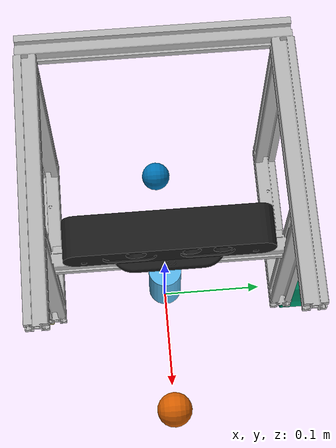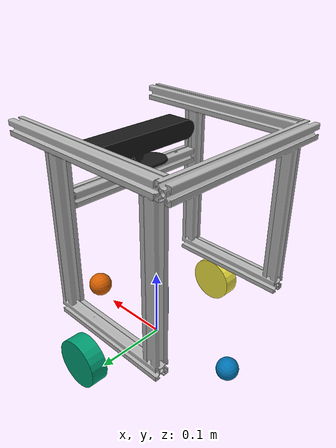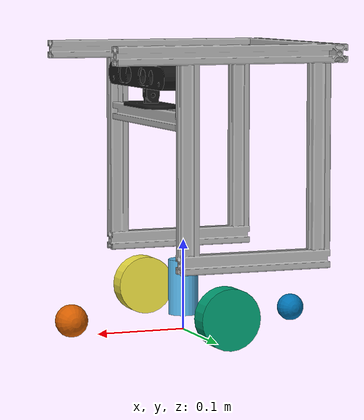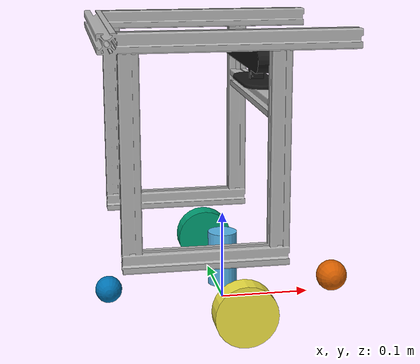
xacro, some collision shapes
<?xml version="1.0"?>
<robot name="exbot_xi"
  xmlns:xacro="http://ros.org/wiki/xacro">
  <!-- the distance between 200bar and botom of frame (means top of irobot create) -->
  <xacro:property name="bar_height" value="0.15" />

  <xacro:include filename="$(find exbotxi_description)/urdf/irobot_create.urdf.xacro"/>
  <!-- want to change a skin of irobot create? create1 or create2 -->
  <create2/>

  <xacro:include filename="$(find exbotxi_description)/urdf/exbotxi_body.urdf.xacro"/>
  <xacro:include filename="$(find exbotxi_description)/urdf/xtion_pro.urdf.xacro"/>
</robot>

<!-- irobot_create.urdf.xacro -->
<robot name="irobot_create"
  xmlns:xacro="http://ros.org/wiki/xacro">
  <xacro:macro name="create1">
    <link name="base_footprint" />

    <joint name="base_footprint_joint" type="fixed">
      <origin xyz="0 0 0.017" rpy="0 0 0" />
      <parent link="base_footprint"/>
      <child link="base_link" />
    </joint>

    <link name="base_link">
      <inertial>
        <origin xyz="0 0 0" rpy="0 0 0" />
        <mass value="3.7223" />
        <inertia ixx="0.01" ixy="0.0" ixz="0.0" iyy="0.01" iyz="0.0" izz="0.5" />
      </inertial>

      <visual>
        <origin xyz="0 0 0.0308" rpy="0 0 0" />
        <geometry>
          <mesh filename="package://exbotxi_description/meshes/irobot_create.STL" />
        </geometry>
        <material name="white">
          <color rgba="0.9 0.9 0.9 1" />
        </material>
      </visual>

      <collision>
        <origin xyz="0 0 0" rpy="0 0 0" />
        <geometry>
          <mesh filename="package://exbotxi_description/meshes/irobot_create.STL" />
        </geometry>
      </collision>
    </link>
  </xacro:macro>

  <xacro:macro name="create2">
    <link name="base_footprint">
      <visual>
        <origin xyz="0 0 0" rpy="0 0 0" />
        <geometry>
          <box size="0.001 0.001 0.001" />
        </geometry>
        <material name="Green" />
      </visual>

      <collision>
        <origin xyz="0 0 0.017" rpy="0 0 0" />
        <geometry>
          <box size="0.001 0.001 0.001" />
        </geometry>
      </collision>
    </link>

    <joint name="base_footprint_joint" type="fixed">
      <origin xyz="0 0 0.017" rpy="0 0 0" />
      <parent link="base_footprint"/>
      <child link="base_link" />
    </joint>

    <link name="base_link">
      <inertial>
        <mass value="2" />
        <origin xyz="0 0 0.0" />
        <inertia ixx="0.01" ixy="0.0" ixz="0.0"
        iyy="0.01" iyz="0.0" izz="0.5" />
      </inertial>

      <visual>
        <origin xyz=" 0 0 0.0308" rpy="0 0 0" />
        <geometry>
          <mesh filename="package://exbotxi_description/meshes/create_body.dae"/>
        </geometry>
      </visual>

      <collision>
        <origin xyz="0.0 0.0 0.0308" rpy="0 0 0" />
        <geometry>
          <cylinder length="0.0611632" radius="0.016495"/>
        </geometry>
      </collision>
    </link>

    <joint name="base_l_wheel_joint" type="fixed">
      <origin xyz="0 0.13 0.015" rpy="0 0 0"/>
      <parent link="base_link"/>
      <child link="left_wheel_link"/>
      <axis xyz="0 1 0"/>
    </joint>

    <link name="left_wheel_link">
      <inertial>
        <origin xyz="0 0 0"/>
        <mass value="0.01" />
        <inertia ixx="0.001" ixy="0.0" ixz="0.0"
        iyy="0.001" iyz="0.0" izz="0.001" />
      </inertial>

      <visual>
        <origin xyz="0 0 0" rpy="0 1.5707 1.5707" />
        <geometry>
          <cylinder radius="0.033" length = "0.023"/>
        </geometry>
      </visual>

      <collision>
        <origin xyz="0 0 0" rpy="0 1.5707 1.5707" />
        <geometry>
          <cylinder radius="0.033" length = "0.023"/>
        </geometry>
      </collision>
    </link>

    <joint name="base_r_wheel_joint" type="fixed">
      <origin xyz="0 -0.13 0.015" rpy="0 0 0"/>
      <parent link="base_link"/>
      <child link="right_wheel_link"/>
      <axis xyz="0 1 0"/>
    </joint>

    <link name="right_wheel_link">
      <inertial>
        <origin xyz="0 0 0"/>
        <mass value="0.01" />
        <inertia ixx="0.001" ixy="0.0" ixz="0.0"
        iyy="0.001" iyz="0.0" izz="0.001" />
      </inertial>

      <visual>
        <origin xyz="0 0 0" rpy="0 1.5707 1.5707" />
        <geometry>
          <cylinder radius="0.033" length = "0.023"/>
        </geometry>
      </visual>

      <collision>
        <origin xyz="0 0 0" rpy="0 1.5707 1.5707" />
        <geometry>
          <cylinder radius="0.033" length = "0.023"/>
        </geometry>
      </collision>
    </link>

    <joint name="rear_castor_joint" type="fixed">
      <origin xyz="-0.13 0 0.0" rpy="0 0 0"/>
      <parent link="base_link"/>
      <child link="rear_wheel_link"/>
      <axis xyz="0 1 0"/>
    </joint>

    <link name="rear_wheel_link">
      <inertial>
        <origin xyz="0 0 0"/>
        <mass value="0.001" />
        <inertia ixx="0.0001" ixy="0.0" ixz="0.0"
        iyy="0.0001" iyz="0.0" izz="0.0001" />
      </inertial>

      <visual>
        <origin xyz="0 0 0" rpy="0 1.5707 1.5707"/>
        <geometry>
          <sphere radius="0.015" />
        </geometry>
      </visual>

      <collision>
        <origin xyz="0 0 0" rpy="0 1.5707 1.5707" />
        <geometry>
          <sphere radius="0.015" />
        </geometry>
      </collision>
    </link>

    <joint name="front_castor_joint" type="fixed">
      <origin xyz="0.13 0 0.0" rpy="0 0 0"/>
      <parent link="base_link"/>
      <child link="front_wheel_link"/>
      <axis xyz="0 1 0"/>
    </joint>

    <link name="front_wheel_link">
      <inertial>
        <origin xyz="0 0 0" />
        <mass value="0.01" />
        <inertia ixx="0.001" ixy="0.0" ixz="0.0"
        iyy="0.001" iyz="0.0" izz="0.001" />
      </inertial>

      <visual>
        <origin xyz="0 0 0" rpy="0 1.5707 1.5707"/>
        <geometry>
          <sphere radius="0.018" />
        </geometry>
      </visual>

      <collision>
        <origin xyz="0 0 0" rpy="0 1.5707 1.5707" />
        <geometry>
          <sphere radius="0.018" />
        </geometry>
      </collision>
    </link>
  </xacro:macro>
</robot>

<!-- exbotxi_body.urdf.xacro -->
<robot name="exbotxi_body"
  xmlns:xacro="http://ros.org/wiki/xacro">

  <joint name="base_frame_joint" type="fixed">
    <origin xyz="0 0 0.06116" rpy="0 0 0" />
    <parent link="base_link" />
    <child link="base_frame" />
  </joint>

  <link name="base_frame">
    <visual>
      <origin xyz="0 0 0" rpy="0 0 0" />
      <geometry>
        <mesh filename="package://exbotxi_description/meshes/base_frame.STL" />
      </geometry>
      <material name="al">
        <color rgba="0.7 0.7 0.7 1" />
      </material>
    </visual>

    <collision>
      <origin xyz="0 0 0" rpy="0 0 0" />
      <geometry>
        <mesh filename="package://exbotxi_description/meshes/base_frame.STL" />
      </geometry>
    </collision>
  </link>

  <joint name="frame_200bar_joint" type="fixed">
    <origin xyz="0.03748 0 ${bar_height}" rpy="0 0 0" />
    <parent link="base_frame" />
    <child link="200bar" />
  </joint>

  <link name="200bar">
    <visual>
      <origin xyz="0 0 0" rpy="0 0 0" />
      <geometry>
        <mesh filename="package://exbotxi_description/meshes/200_bar.STL" />
      </geometry>
      <material name="al" />
    </visual>

    <collision>
      <origin xyz="0 0 0" rpy="0 0 0" />
      <geometry>
        <mesh filename="package://exbotxi_description/meshes/200_bar.STL" />
      </geometry>
    </collision>
  </link>
</robot>

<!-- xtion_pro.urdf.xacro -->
<robot name="xtion_pro"
  xmlns:xacro="http://ros.org/wiki/xacro">
  <xacro:property name="PI" value="3.14159"/>

  <joint name="camera_base" type="fixed">
    <origin xyz="0 0 0.02" rpy="0 0 0"/>
    <parent link="200bar"/>
    <child link="camera_base" />
  </joint>

  <link name="camera_base">
    <visual>
      <origin xyz="0 0 0" rpy="0 0 0" />
      <geometry>
        <mesh filename="package://exbotxi_description/meshes/xtion_pro_live.STL" />
      </geometry>
      <material name="black">
        <color rgba="0.1 0.1 0.1 1" />
      </material>
    </visual>

    <collision>
      <origin xyz="0 0 0" rpy="0 0 0" />
      <geometry>
        <mesh filename="package://exbotxi_description/meshes/xtion_pro_live.STL" />
      </geometry>
    </collision>
  </link>

  <joint name="camera_link_joint" type="fixed">
    <origin xyz="0 0 0.035" rpy="0 0 0"/>
    <parent link="camera_base"/>
    <child link="camera_link" />
  </joint>

  <link name="camera_link" />

  <joint name="camera_rgb_joint" type="fixed">
    <origin xyz="0.008 0.0185 0" rpy="0 0 0"/>
    <parent link="camera_link"/>
    <child link="camera_rgb_frame" />
  </joint>

  <link name="camera_rgb_frame" />

  <joint name="camera_rgb_optical_joint" type="fixed">
    <origin xyz="0 0 0" rpy="${-PI/2} 0 ${-PI/2}" />
    <parent link="camera_rgb_frame" />
    <child link="camera_rgb_optical_frame" />
  </joint>

  <link name="camera_rgb_optical_frame" />

  <joint name="camera_depth_joint" type="fixed">
    <origin xyz="0.008 0.0445 0" rpy="0 0 0" />
    <parent link="camera_link" />
    <child link="camera_depth_frame" />
  </joint>

  <link name="camera_depth_frame" />

  <joint name="camera_depth_optical_joint" type="fixed">
    <origin xyz="0 0 0" rpy="${-PI/2} 0 ${-PI/2}" />
    <parent link="camera_depth_frame" />
    <child link="camera_depth_optical_frame" />
  </joint>

  <link name="camera_depth_optical_frame" />
</robot>
